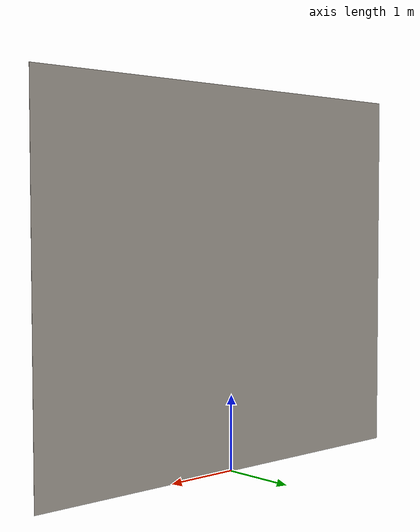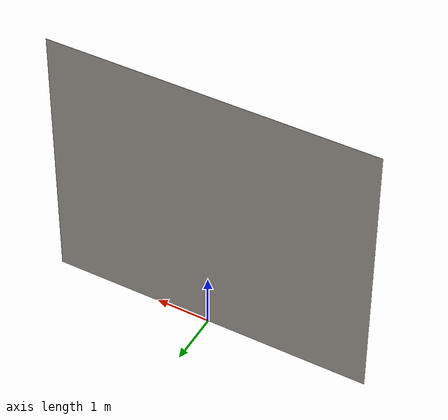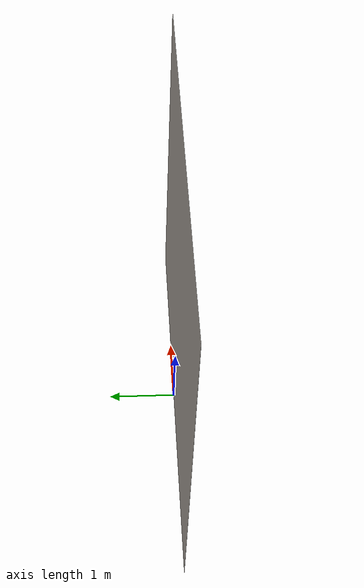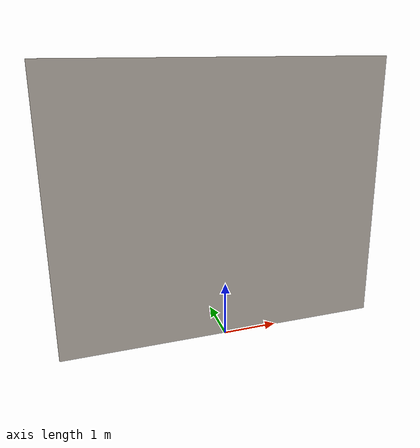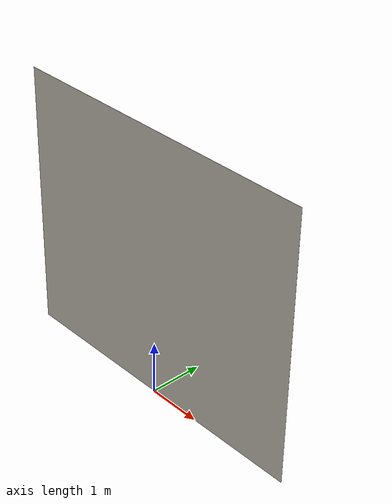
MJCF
<mujoco model="taiwanbear scene">
  <statistic center="0 0 0.2" extent="0.6"/>

  <asset>
    <texture name="wall" file="assets/Wall/wall_color.png" type="2d"/>
    <material name="wall" texture="wall" texuniform="true"/>
  </asset>

  <worldbody>
    <body name="Wall" pos="0 0 2.5" quat="0.70710678 0.70710678 0.0 0.0">
      <geom name="Wall geom" size="3 2.5 0.1" type="plane" material="wall" />
    </body>
  </worldbody>
</mujoco>
